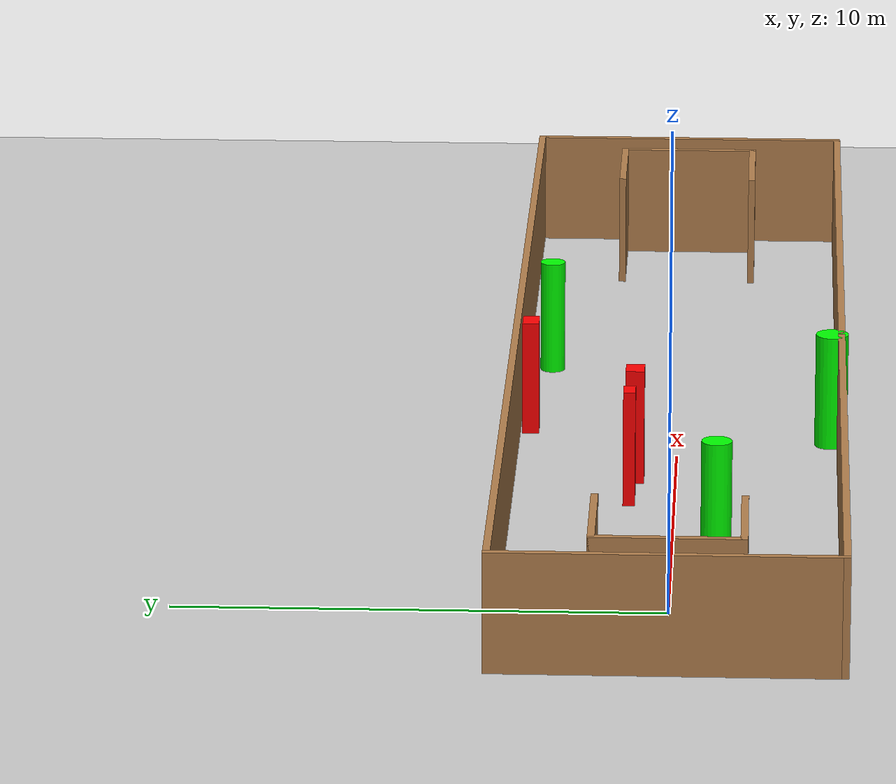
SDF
<sdf version="1.7">
 <world name="default">
  <light name="sun" type="directional">
   <pose>0 0 10 0 -0 0</pose>
   <diffuse>0.8 0.8 0.8 1</diffuse>
   <specular>0.2 0.2 0.2 1</specular>
   <attenuation>
    <range>1000</range>
    <constant>0.9</constant>
    <linear>0.01</linear>
    <quadratic>0.001</quadratic>
   </attenuation>
   <direction>-0.5 0.1 -0.9</direction>
   <spot><inner_angle>0</inner_angle><outer_angle>0</outer_angle><falloff>0</falloff></spot>
  </light>
  <model name="ground_plane">
   <static>1</static>
   <link name="link">
    <collision name="collision">
     <geometry><plane><normal>0 0 1</normal><size>100 100</size></plane></geometry>
     <surface>
      <contact><collide_bitmask>65535</collide_bitmask></contact>
      <friction><ode><mu>100</mu><mu2>50</mu2></ode></friction>
     </surface>
    </collision>
    <visual name="visual">
     <cast_shadows>0</cast_shadows>
     <geometry><plane><normal>0 0 1</normal><size>100 100</size></plane></geometry>
     <material>
      <script><uri>file://media/materials/scripts/gazebo.material</uri><name>Gazebo/Grey</name></script>
     </material>
    </visual>
   </link>
  </model>
  <gravity>0 0 -9.8</gravity>
  <magnetic_field>6e-06 2.3e-05 -4.2e-05</magnetic_field>
  <atmosphere type="adiabatic"/>
  <physics type="ode">
   <max_step_size>0.001</max_step_size>
   <real_time_factor>1</real_time_factor>
   <real_time_update_rate>1000</real_time_update_rate>
  </physics>
  <scene><ambient>0.4 0.4 0.4 1</ambient><background>0.7 0.7 0.7 1</background><shadows>1</shadows></scene>
  <spherical_coordinates>
   <surface_model>EARTH_WGS84</surface_model>
   <latitude_deg>0</latitude_deg>
   <longitude_deg>0</longitude_deg>
   <elevation>0</elevation>
   <heading_deg>0</heading_deg>
  </spherical_coordinates>
  <model name="my_base_walls">
   <link name="Wall_0">
    <collision name="Wall_0_Collision">
     <geometry><box><size>7.15 0.15 2.5</size></box></geometry>
     <pose>0 0 1.25 0 -0 0</pose>
    </collision>
    <visual name="Wall_0_Visual">
     <pose>0 0 1.25 0 -0 0</pose>
     <geometry><box><size>7.15 0.15 2.5</size></box></geometry>
     <material>
      <script><uri>file://media/materials/scripts/gazebo.material</uri><name>Gazebo/Wood</name></script>
      <ambient>1 1 1 1</ambient>
     </material>
     <meta><layer>0</layer></meta>
    </visual>
    <pose>-15 0 0 0 -0 1.5708</pose>
   </link>
   <link name="Wall_10">
    <collision name="Wall_10_Collision">
     <geometry><box><size>2.65 0.15 2.5</size></box></geometry>
     <pose>0 0 1.25 0 -0 0</pose>
    </collision>
    <visual name="Wall_10_Visual">
     <pose>0 0 1.25 0 -0 0</pose>
     <geometry><box><size>2.65 0.15 2.5</size></box></geometry>
     <material>
      <script><uri>file://media/materials/scripts/gazebo.material</uri><name>Gazebo/Wood</name></script>
      <ambient>1 1 1 1</ambient>
     </material>
     <meta><layer>0</layer></meta>
    </visual>
    <pose>-12.75 -1.5 0 0 -0 0</pose>
   </link>
   <link name="Wall_12">
    <collision name="Wall_12_Collision">
     <geometry><box><size>2.65 0.15 2.5</size></box></geometry>
     <pose>0 0 1.25 0 -0 0</pose>
    </collision>
    <visual name="Wall_12_Visual">
     <pose>0 0 1.25 0 -0 0</pose>
     <geometry><box><size>2.65 0.15 2.5</size></box></geometry>
     <material>
      <script><uri>file://media/materials/scripts/gazebo.material</uri><name>Gazebo/Wood</name></script>
      <ambient>1 1 1 1</ambient>
     </material>
     <meta><layer>0</layer></meta>
    </visual>
    <pose>-12.75 1.5 0 0 -0 0</pose>
   </link>
   <link name="Wall_14">
    <collision name="Wall_14_Collision">
     <geometry><box><size>3.15 0.15 2.5</size></box></geometry>
     <pose>0 0 1.25 0 -0 0</pose>
    </collision>
    <visual name="Wall_14_Visual">
     <pose>0 0 1.25 0 -0 0</pose>
     <geometry><box><size>3.15 0.15 2.5</size></box></geometry>
     <material>
      <script><uri>file://media/materials/scripts/gazebo.material</uri><name>Gazebo/Wood</name></script>
      <ambient>1 1 1 1</ambient>
     </material>
     <meta><layer>0</layer></meta>
    </visual>
    <pose>14 0 0 0 -0 -1.5708</pose>
   </link>
   <link name="Wall_15">
    <collision name="Wall_15_Collision">
     <geometry><box><size>2.65 0.15 2.5</size></box></geometry>
     <pose>0 0 1.25 0 -0 0</pose>
    </collision>
    <visual name="Wall_15_Visual">
     <pose>0 0 1.25 0 -0 0</pose>
     <geometry><box><size>2.65 0.15 2.5</size></box></geometry>
     <material>
      <script><uri>file://media/materials/scripts/gazebo.material</uri><name>Gazebo/Wood</name></script>
      <ambient>1 1 1 1</ambient>
     </material>
     <meta><layer>0</layer></meta>
    </visual>
    <pose>12.75 -1.5 0 0 -0 3.14159</pose>
   </link>
   <link name="Wall_17">
    <collision name="Wall_17_Collision">
     <geometry><box><size>2.65 0.15 2.5</size></box></geometry>
     <pose>0 0 1.25 0 -0 0</pose>
    </collision>
    <visual name="Wall_17_Visual">
     <pose>0 0 1.25 0 -0 0</pose>
     <geometry><box><size>2.65 0.15 2.5</size></box></geometry>
     <material>
      <script><uri>file://media/materials/scripts/gazebo.material</uri><name>Gazebo/Wood</name></script>
      <ambient>1 1 1 1</ambient>
     </material>
     <meta><layer>0</layer></meta>
    </visual>
    <pose>12.75 1.5 0 0 -0 3.14159</pose>
   </link>
   <link name="Wall_2">
    <collision name="Wall_2_Collision">
     <geometry><box><size>30.15 0.15 2.5</size></box></geometry>
     <pose>0 0 1.25 0 -0 0</pose>
    </collision>
    <visual name="Wall_2_Visual">
     <pose>0 0 1.25 0 -0 0</pose>
     <geometry><box><size>30.15 0.15 2.5</size></box></geometry>
     <material>
      <script><uri>file://media/materials/scripts/gazebo.material</uri><name>Gazebo/Wood</name></script>
      <ambient>1 1 1 1</ambient>
     </material>
     <meta><layer>0</layer></meta>
    </visual>
    <pose>-0 -3.5 0 0 -0 0</pose>
   </link>
   <link name="Wall_4">
    <collision name="Wall_4_Collision">
     <geometry><box><size>30.15 0.15 2.5</size></box></geometry>
     <pose>0 0 1.25 0 -0 0</pose>
    </collision>
    <visual name="Wall_4_Visual">
     <pose>0 0 1.25 0 -0 0</pose>
     <geometry><box><size>30.15 0.15 2.5</size></box></geometry>
     <material>
      <script><uri>file://media/materials/scripts/gazebo.material</uri><name>Gazebo/Wood</name></script>
      <ambient>1 1 1 1</ambient>
     </material>
     <meta><layer>0</layer></meta>
    </visual>
    <pose>-0 3.5 0 0 -0 0</pose>
   </link>
   <link name="Wall_6">
    <collision name="Wall_6_Collision">
     <geometry><box><size>7.15 0.15 2.5</size></box></geometry>
     <pose>0 0 1.25 0 -0 0</pose>
    </collision>
    <visual name="Wall_6_Visual">
     <pose>0 0 1.25 0 -0 0</pose>
     <geometry><box><size>7.15 0.15 2.5</size></box></geometry>
     <material>
      <script><uri>file://media/materials/scripts/gazebo.material</uri><name>Gazebo/Wood</name></script>
      <ambient>1 1 1 1</ambient>
     </material>
     <meta><layer>0</layer></meta>
    </visual>
    <pose>15 0 0 0 -0 -1.5708</pose>
   </link>
   <link name="Wall_9">
    <collision name="Wall_9_Collision">
     <geometry><box><size>3.15 0.15 2.5</size></box></geometry>
     <pose>0 0 1.25 0 -0 0</pose>
    </collision>
    <visual name="Wall_9_Visual">
     <pose>0 0 1.25 0 -0 0</pose>
     <geometry><box><size>3.15 0.15 2.5</size></box></geometry>
     <material>
      <script><uri>file://media/materials/scripts/gazebo.material</uri><name>Gazebo/Wood</name></script>
      <ambient>1 1 1 1</ambient>
     </material>
     <meta><layer>0</layer></meta>
    </visual>
    <pose>-14 0 0 0 -0 -1.5708</pose>
   </link>
   <static>1</static>
   <pose>11.5 0 0 0 -0 0</pose>
  </model>
  <model name="cylinder1">
   <static>1</static>
   <link name="link">
    <inertial>
     <mass>1</mass>
     <inertia><ixx>0.5</ixx><ixy>0</ixy><ixz>0</ixz><iyy>0.5</iyy><iyz>0</iyz><izz>1</izz></inertia>
    </inertial>
    <collision name="collision">
     <geometry><cylinder><radius>0.3156925582068212</radius><length>2.5</length></cylinder></geometry>
    </collision>
    <visual name="visual">
     <geometry><cylinder><radius>0.3156925582068212</radius><length>2.5</length></cylinder></geometry>
     <material>
      <ambient>0 1 0 1</ambient>
      <diffuse>0 1 0 1</diffuse>
      <specular>0.1 0.1 0.1 1</specular>
      <emissive>0 0 0 0</emissive>
     </material>
    </visual>
   </link>
   <pose>3.5409050884977376 -0.9005324476409959 1.25 0 0 0</pose>
  </model>
  <model name="cylinder2">
   <static>1</static>
   <link name="link">
    <inertial>
     <mass>1</mass>
     <inertia><ixx>0.5</ixx><ixy>0</ixy><ixz>0</ixz><iyy>0.5</iyy><iyz>0</iyz><izz>1</izz></inertia>
    </inertial>
    <collision name="collision">
     <geometry><cylinder><radius>0.34929266502652945</radius><length>2.5</length></cylinder></geometry>
    </collision>
    <visual name="visual">
     <geometry><cylinder><radius>0.34929266502652945</radius><length>2.5</length></cylinder></geometry>
     <material>
      <ambient>0 1 0 1</ambient>
      <diffuse>0 1 0 1</diffuse>
      <specular>0.1 0.1 0.1 1</specular>
      <emissive>0 0 0 0</emissive>
     </material>
    </visual>
   </link>
   <pose>10.95386354189204 -3.2973328243208164 1.25 0 0 0</pose>
  </model>
  <model name="cylinder3">
   <static>1</static>
   <link name="link">
    <inertial>
     <mass>1</mass>
     <inertia><ixx>0.5</ixx><ixy>0</ixy><ixz>0</ixz><iyy>0.5</iyy><iyz>0</iyz><izz>1</izz></inertia>
    </inertial>
    <collision name="collision">
     <geometry><cylinder><radius>0.27082727484885605</radius><length>2.5</length></cylinder></geometry>
    </collision>
    <visual name="visual">
     <geometry><cylinder><radius>0.27082727484885605</radius><length>2.5</length></cylinder></geometry>
     <material>
      <ambient>0 1 0 1</ambient>
      <diffuse>0 1 0 1</diffuse>
      <specular>0.1 0.1 0.1 1</specular>
      <emissive>0 0 0 0</emissive>
     </material>
    </visual>
   </link>
   <pose>16.102611301575656 2.884448823732801 1.25 0 0 0</pose>
  </model>
  <model name="box1">
   <static>1</static>
   <link name="link">
    <inertial>
     <mass>1</mass>
     <inertia><ixx>0.083</ixx><ixy>0</ixy><ixz>0</ixz><iyy>0.083</iyy><iyz>0</iyz><izz>0.083</izz></inertia>
    </inertial>
    <collision name="collision">
     <geometry><box><size>0.5406555214408664 0.35693743432408964 2.5</size></box></geometry>
    </collision>
    <visual name="visual">
     <geometry><box><size>0.5406555214408664 0.35693743432408964 2.5</size></box></geometry>
     <material>
      <ambient>1 0 0 1</ambient>
      <diffuse>1 0 0 1</diffuse>
      <specular>0.1 0.1 0.1 1</specular>
      <emissive>0 0 0 0</emissive>
     </material>
    </visual>
    <sensor name="my_contact" type="contact">
     <contact><collision>box_collision</collision><topic>__default_topic__</topic></contact>
    </sensor>
   </link>
   <pose>11.713512620601117 3.204011326529878 1.25 0 0 0</pose>
  </model>
  <model name="box2">
   <static>1</static>
   <link name="link">
    <inertial>
     <mass>1</mass>
     <inertia><ixx>0.083</ixx><ixy>0</ixy><ixz>0</ixz><iyy>0.083</iyy><iyz>0</iyz><izz>0.083</izz></inertia>
    </inertial>
    <collision name="collision">
     <geometry><box><size>0.46997087739817617 0.2529906163781657 2.5</size></box></geometry>
    </collision>
    <visual name="visual">
     <geometry><box><size>0.46997087739817617 0.2529906163781657 2.5</size></box></geometry>
     <material>
      <ambient>1 0 0 1</ambient>
      <diffuse>1 0 0 1</diffuse>
      <specular>0.1 0.1 0.1 1</specular>
      <emissive>0 0 0 0</emissive>
     </material>
    </visual>
    <sensor name="my_contact" type="contact">
     <contact><collision>box_collision</collision><topic>__default_topic__</topic></contact>
    </sensor>
   </link>
   <pose>6.890942858263735 0.9612887246503572 1.25 0 0 0</pose>
  </model>
  <model name="box3">
   <static>1</static>
   <link name="link">
    <inertial>
     <mass>1</mass>
     <inertia><ixx>0.083</ixx><ixy>0</ixy><ixz>0</ixz><iyy>0.083</iyy><iyz>0</iyz><izz>0.083</izz></inertia>
    </inertial>
    <collision name="collision">
     <geometry><box><size>0.5074068416185187 0.39741589525918947 2.5</size></box></geometry>
    </collision>
    <visual name="visual">
     <geometry><box><size>0.5074068416185187 0.39741589525918947 2.5</size></box></geometry>
     <material>
      <ambient>1 0 0 1</ambient>
      <diffuse>1 0 0 1</diffuse>
      <specular>0.1 0.1 0.1 1</specular>
      <emissive>0 0 0 0</emissive>
     </material>
    </visual>
    <sensor name="my_contact" type="contact">
     <contact><collision>box_collision</collision><topic>__default_topic__</topic></contact>
    </sensor>
   </link>
   <pose>8.373862172087486 0.8739156094163372 1.25 0 0 0</pose>
  </model>
 </world>
</sdf>
